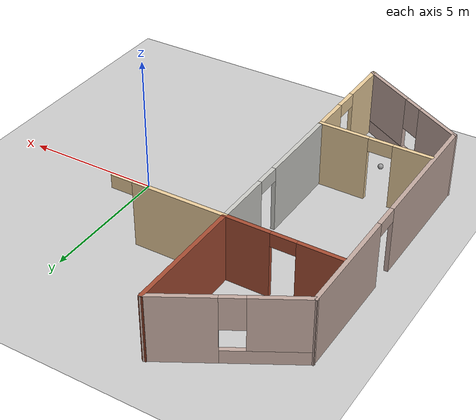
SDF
<sdf version="1.6">
 <world name="default">
  <model name="ground_plane">
   <static>1</static>
   <link name="link">
    <collision name="collision">
     <geometry><plane><normal>0 0 1</normal><size>100 100</size></plane></geometry>
     <surface><friction><ode><mu>100</mu><mu2>50</mu2></ode></friction></surface>
    </collision>
    <visual name="visual">
     <cast_shadows>0</cast_shadows>
     <geometry><plane><normal>0 0 1</normal><size>100 100</size></plane></geometry>
     <material>
      <script><uri>file://media/materials/scripts/gazebo.material</uri><name>Gazebo/Grey</name></script>
     </material>
    </visual>
   </link>
  </model>
  <model name="new_floor">
   <link name="Wall_22">
    <pose>-9.12522 0 0 0 0 -1.5708</pose>
    <visual name="Wall_22_Visual_0">
     <pose>-2.94929 0 1.25 0 -0 0</pose>
     <geometry><box><size>4.10142 0.15 2.5</size></box></geometry>
     <material>
      <script><uri>file://media/materials/scripts/gazebo.material</uri><name>Gazebo/Grey</name></script>
      <ambient>0.760784 0.662745 0.627451 1</ambient>
      <shader type="pixel"/>
      <diffuse>0.7 0.7 0.7 1</diffuse>
      <specular>0.01 0.01 0.01 1</specular>
      <emissive>0 0 0 1</emissive>
     </material>
    </visual>
    <visual name="Wall_22_Visual_1">
     <pose>2.50071 0 1.25 0 -0 0</pose>
     <geometry><box><size>4.99857 0.15 2.5</size></box></geometry>
     <material>
      <script><uri>file://media/materials/scripts/gazebo.material</uri><name>Gazebo/Grey</name></script>
      <ambient>0.760784 0.662745 0.627451 1</ambient>
      <shader type="pixel"/>
      <diffuse>0.7 0.7 0.7 1</diffuse>
      <specular>0.01 0.01 0.01 1</specular>
      <emissive>0 0 0 1</emissive>
     </material>
    </visual>
    <visual name="Wall_22_Visual_2">
     <pose>-0.448575 0 2.25 0 -0 0</pose>
     <geometry><box><size>0.9 0.15 0.5</size></box></geometry>
     <material>
      <script><uri>file://media/materials/scripts/gazebo.material</uri><name>Gazebo/Grey</name></script>
      <ambient>0.760784 0.662745 0.627451 1</ambient>
      <shader type="pixel"/>
      <diffuse>0.7 0.7 0.7 1</diffuse>
      <specular>0.01 0.01 0.01 1</specular>
      <emissive>0 0 0 1</emissive>
     </material>
    </visual>
    <collision name="Wall_22_Collision_0">
     <pose>-2.94929 0 1.25 0 -0 0</pose>
     <geometry><box><size>4.10142 0.15 2.5</size></box></geometry>
     <surface>
      <friction>
       <ode><mu>1</mu><mu2>1</mu2><fdir1>0 0 0</fdir1><slip1>0</slip1><slip2>0</slip2></ode>
       <torsional>
        <coefficient>1</coefficient>
        <patch_radius>0</patch_radius>
        <surface_radius>0</surface_radius>
        <use_patch_radius>1</use_patch_radius>
        <ode><slip>0</slip></ode>
       </torsional>
      </friction>
      <bounce><restitution_coefficient>0</restitution_coefficient><threshold>1e+06</threshold></bounce>
      <contact>
       <collide_without_contact>0</collide_without_contact>
       <collide_without_contact_bitmask>1</collide_without_contact_bitmask>
       <collide_bitmask>1</collide_bitmask>
       <ode>
        <soft_cfm>0</soft_cfm>
        <soft_erp>0.2</soft_erp>
        <kp>1e+13</kp>
        <kd>1</kd>
        <max_vel>0.01</max_vel>
        <min_depth>0</min_depth>
       </ode>
       <bullet>
        <split_impulse>1</split_impulse>
        <split_impulse_penetration_threshold>-0.01</split_impulse_penetration_threshold>
        <soft_cfm>0</soft_cfm>
        <soft_erp>0.2</soft_erp>
        <kp>1e+13</kp>
        <kd>1</kd>
       </bullet>
      </contact>
     </surface>
    </collision>
    <collision name="Wall_22_Collision_2">
     <pose>-0.448575 0 2.25 0 -0 0</pose>
     <geometry><box><size>0.9 0.15 0.5</size></box></geometry>
     <surface>
      <friction>
       <ode><mu>1</mu><mu2>1</mu2><fdir1>0 0 0</fdir1><slip1>0</slip1><slip2>0</slip2></ode>
       <torsional>
        <coefficient>1</coefficient>
        <patch_radius>0</patch_radius>
        <surface_radius>0</surface_radius>
        <use_patch_radius>1</use_patch_radius>
        <ode><slip>0</slip></ode>
       </torsional>
      </friction>
      <bounce><restitution_coefficient>0</restitution_coefficient><threshold>1e+06</threshold></bounce>
      <contact>
       <collide_without_contact>0</collide_without_contact>
       <collide_without_contact_bitmask>1</collide_without_contact_bitmask>
       <collide_bitmask>1</collide_bitmask>
       <ode>
        <soft_cfm>0</soft_cfm>
        <soft_erp>0.2</soft_erp>
        <kp>1e+13</kp>
        <kd>1</kd>
        <max_vel>0.01</max_vel>
        <min_depth>0</min_depth>
       </ode>
       <bullet>
        <split_impulse>1</split_impulse>
        <split_impulse_penetration_threshold>-0.01</split_impulse_penetration_threshold>
        <soft_cfm>0</soft_cfm>
        <soft_erp>0.2</soft_erp>
        <kp>1e+13</kp>
        <kd>1</kd>
       </bullet>
      </contact>
     </surface>
    </collision>
    <collision name="Wall_22_Collision_1">
     <pose>2.50071 0 1.25 0 -0 0</pose>
     <geometry><box><size>4.99857 0.15 2.5</size></box></geometry>
     <surface>
      <friction>
       <ode><mu>1</mu><mu2>1</mu2><fdir1>0 0 0</fdir1><slip1>0</slip1><slip2>0</slip2></ode>
       <torsional>
        <coefficient>1</coefficient>
        <patch_radius>0</patch_radius>
        <surface_radius>0</surface_radius>
        <use_patch_radius>1</use_patch_radius>
        <ode><slip>0</slip></ode>
       </torsional>
      </friction>
      <bounce><restitution_coefficient>0</restitution_coefficient><threshold>1e+06</threshold></bounce>
      <contact>
       <collide_without_contact>0</collide_without_contact>
       <collide_without_contact_bitmask>1</collide_without_contact_bitmask>
       <collide_bitmask>1</collide_bitmask>
       <ode>
        <soft_cfm>0</soft_cfm>
        <soft_erp>0.2</soft_erp>
        <kp>1e+13</kp>
        <kd>1</kd>
        <max_vel>0.01</max_vel>
        <min_depth>0</min_depth>
       </ode>
       <bullet>
        <split_impulse>1</split_impulse>
        <split_impulse_penetration_threshold>-0.01</split_impulse_penetration_threshold>
        <soft_cfm>0</soft_cfm>
        <soft_erp>0.2</soft_erp>
        <kp>1e+13</kp>
        <kd>1</kd>
       </bullet>
      </contact>
     </surface>
    </collision>
   </link>
   <link name="Wall_24">
    <pose>-7.02511 -6.1375 0 0 0 -0.523599</pose>
    <visual name="Wall_24_Visual_0">
     <pose>-1.50611 0 1.25 0 -0 0</pose>
     <geometry><box><size>1.98778 0.15 2.5</size></box></geometry>
     <material>
      <script><uri>file://media/materials/scripts/gazebo.material</uri><name>Gazebo/Grey</name></script>
      <ambient>0.760784 0.662745 0.627451 1</ambient>
      <shader type="pixel"/>
      <diffuse>0.7 0.7 0.7 1</diffuse>
      <specular>0.01 0.01 0.01 1</specular>
      <emissive>0 0 0 1</emissive>
     </material>
    </visual>
    <visual name="Wall_24_Visual_1">
     <pose>0.993891 0 0.25 0 -0 0</pose>
     <geometry><box><size>3.01222 0.15 0.5</size></box></geometry>
     <material>
      <script><uri>file://media/materials/scripts/gazebo.material</uri><name>Gazebo/Grey</name></script>
      <ambient>0.760784 0.662745 0.627451 1</ambient>
      <shader type="pixel"/>
      <diffuse>0.7 0.7 0.7 1</diffuse>
      <specular>0.01 0.01 0.01 1</specular>
      <emissive>0 0 0 1</emissive>
     </material>
    </visual>
    <visual name="Wall_24_Visual_2">
     <pose>1.39389 0 1.5 0 -0 0</pose>
     <geometry><box><size>2.21222 0.15 2</size></box></geometry>
     <material>
      <script><uri>file://media/materials/scripts/gazebo.material</uri><name>Gazebo/Grey</name></script>
      <ambient>0.760784 0.662745 0.627451 1</ambient>
      <shader type="pixel"/>
      <diffuse>0.7 0.7 0.7 1</diffuse>
      <specular>0.01 0.01 0.01 1</specular>
      <emissive>0 0 0 1</emissive>
     </material>
    </visual>
    <visual name="Wall_24_Visual_3">
     <pose>-0.112218 0 1.9 0 -0 0</pose>
     <geometry><box><size>0.8 0.15 1.2</size></box></geometry>
     <material>
      <script><uri>file://media/materials/scripts/gazebo.material</uri><name>Gazebo/Grey</name></script>
      <ambient>0.760784 0.662745 0.627451 1</ambient>
      <shader type="pixel"/>
      <diffuse>0.7 0.7 0.7 1</diffuse>
      <specular>0.01 0.01 0.01 1</specular>
      <emissive>0 0 0 1</emissive>
     </material>
    </visual>
    <collision name="Wall_24_Collision_0">
     <pose>-1.50611 0 1.25 0 -0 0</pose>
     <geometry><box><size>1.98778 0.15 2.5</size></box></geometry>
     <surface>
      <friction>
       <ode><mu>1</mu><mu2>1</mu2><fdir1>0 0 0</fdir1><slip1>0</slip1><slip2>0</slip2></ode>
       <torsional>
        <coefficient>1</coefficient>
        <patch_radius>0</patch_radius>
        <surface_radius>0</surface_radius>
        <use_patch_radius>1</use_patch_radius>
        <ode><slip>0</slip></ode>
       </torsional>
      </friction>
      <bounce><restitution_coefficient>0</restitution_coefficient><threshold>1e+06</threshold></bounce>
      <contact>
       <collide_without_contact>0</collide_without_contact>
       <collide_without_contact_bitmask>1</collide_without_contact_bitmask>
       <collide_bitmask>1</collide_bitmask>
       <ode>
        <soft_cfm>0</soft_cfm>
        <soft_erp>0.2</soft_erp>
        <kp>1e+13</kp>
        <kd>1</kd>
        <max_vel>0.01</max_vel>
        <min_depth>0</min_depth>
       </ode>
       <bullet>
        <split_impulse>1</split_impulse>
        <split_impulse_penetration_threshold>-0.01</split_impulse_penetration_threshold>
        <soft_cfm>0</soft_cfm>
        <soft_erp>0.2</soft_erp>
        <kp>1e+13</kp>
        <kd>1</kd>
       </bullet>
      </contact>
     </surface>
    </collision>
    <collision name="Wall_24_Collision_1">
     <pose>0.993891 0 0.25 0 -0 0</pose>
     <geometry><box><size>3.01222 0.15 0.5</size></box></geometry>
     <surface>
      <friction>
       <ode><mu>1</mu><mu2>1</mu2><fdir1>0 0 0</fdir1><slip1>0</slip1><slip2>0</slip2></ode>
       <torsional>
        <coefficient>1</coefficient>
        <patch_radius>0</patch_radius>
        <surface_radius>0</surface_radius>
        <use_patch_radius>1</use_patch_radius>
        <ode><slip>0</slip></ode>
       </torsional>
      </friction>
      <bounce><restitution_coefficient>0</restitution_coefficient><threshold>1e+06</threshold></bounce>
      <contact>
       <collide_without_contact>0</collide_without_contact>
       <collide_without_contact_bitmask>1</collide_without_contact_bitmask>
       <collide_bitmask>1</collide_bitmask>
       <ode>
        <soft_cfm>0</soft_cfm>
        <soft_erp>0.2</soft_erp>
        <kp>1e+13</kp>
        <kd>1</kd>
        <max_vel>0.01</max_vel>
        <min_depth>0</min_depth>
       </ode>
       <bullet>
        <split_impulse>1</split_impulse>
        <split_impulse_penetration_threshold>-0.01</split_impulse_penetration_threshold>
        <soft_cfm>0</soft_cfm>
        <soft_erp>0.2</soft_erp>
        <kp>1e+13</kp>
        <kd>1</kd>
       </bullet>
      </contact>
     </surface>
    </collision>
    <collision name="Wall_24_Collision_2">
     <pose>1.39389 0 1.5 0 -0 0</pose>
     <geometry><box><size>2.21222 0.15 2</size></box></geometry>
     <surface>
      <friction>
       <ode><mu>1</mu><mu2>1</mu2><fdir1>0 0 0</fdir1><slip1>0</slip1><slip2>0</slip2></ode>
       <torsional>
        <coefficient>1</coefficient>
        <patch_radius>0</patch_radius>
        <surface_radius>0</surface_radius>
        <use_patch_radius>1</use_patch_radius>
        <ode><slip>0</slip></ode>
       </torsional>
      </friction>
      <bounce><restitution_coefficient>0</restitution_coefficient><threshold>1e+06</threshold></bounce>
      <contact>
       <collide_without_contact>0</collide_without_contact>
       <collide_without_contact_bitmask>1</collide_without_contact_bitmask>
       <collide_bitmask>1</collide_bitmask>
       <ode>
        <soft_cfm>0</soft_cfm>
        <soft_erp>0.2</soft_erp>
        <kp>1e+13</kp>
        <kd>1</kd>
        <max_vel>0.01</max_vel>
        <min_depth>0</min_depth>
       </ode>
       <bullet>
        <split_impulse>1</split_impulse>
        <split_impulse_penetration_threshold>-0.01</split_impulse_penetration_threshold>
        <soft_cfm>0</soft_cfm>
        <soft_erp>0.2</soft_erp>
        <kp>1e+13</kp>
        <kd>1</kd>
       </bullet>
      </contact>
     </surface>
    </collision>
    <collision name="Wall_24_Collision_3">
     <pose>-0.112218 0 1.9 0 -0 0</pose>
     <geometry><box><size>0.8 0.15 1.2</size></box></geometry>
     <surface>
      <friction>
       <ode><mu>1</mu><mu2>1</mu2><fdir1>0 0 0</fdir1><slip1>0</slip1><slip2>0</slip2></ode>
       <torsional>
        <coefficient>1</coefficient>
        <patch_radius>0</patch_radius>
        <surface_radius>0</surface_radius>
        <use_patch_radius>1</use_patch_radius>
        <ode><slip>0</slip></ode>
       </torsional>
      </friction>
      <bounce><restitution_coefficient>0</restitution_coefficient><threshold>1e+06</threshold></bounce>
      <contact>
       <collide_without_contact>0</collide_without_contact>
       <collide_without_contact_bitmask>1</collide_without_contact_bitmask>
       <collide_bitmask>1</collide_bitmask>
       <ode>
        <soft_cfm>0</soft_cfm>
        <soft_erp>0.2</soft_erp>
        <kp>1e+13</kp>
        <kd>1</kd>
        <max_vel>0.01</max_vel>
        <min_depth>0</min_depth>
       </ode>
       <bullet>
        <split_impulse>1</split_impulse>
        <split_impulse_penetration_threshold>-0.01</split_impulse_penetration_threshold>
        <soft_cfm>0</soft_cfm>
        <soft_erp>0.2</soft_erp>
        <kp>1e+13</kp>
        <kd>1</kd>
       </bullet>
      </contact>
     </surface>
    </collision>
   </link>
   <link name="Wall_30">
    <pose>-7.02511 6.1375 0 0 0 -2.61799</pose>
    <visual name="Wall_30_Visual_0">
     <pose>-1.39719 0 1.25 0 -0 0</pose>
     <geometry><box><size>2.20562 0.15 2.5</size></box></geometry>
     <material>
      <script><uri>file://media/materials/scripts/gazebo.material</uri><name>Gazebo/Grey</name></script>
      <ambient>0.760784 0.662745 0.627451 1</ambient>
      <shader type="pixel"/>
      <diffuse>0.7 0.7 0.7 1</diffuse>
      <specular>0.01 0.01 0.01 1</specular>
      <emissive>0 0 0 1</emissive>
     </material>
    </visual>
    <visual name="Wall_30_Visual_1">
     <pose>1.10281 0 0.25 0 -0 0</pose>
     <geometry><box><size>2.79438 0.15 0.5</size></box></geometry>
     <material>
      <script><uri>file://media/materials/scripts/gazebo.material</uri><name>Gazebo/Grey</name></script>
      <ambient>0.760784 0.662745 0.627451 1</ambient>
      <shader type="pixel"/>
      <diffuse>0.7 0.7 0.7 1</diffuse>
      <specular>0.01 0.01 0.01 1</specular>
      <emissive>0 0 0 1</emissive>
     </material>
    </visual>
    <visual name="Wall_30_Visual_2">
     <pose>1.50281 0 1.5 0 -0 0</pose>
     <geometry><box><size>1.99438 0.15 2</size></box></geometry>
     <material>
      <script><uri>file://media/materials/scripts/gazebo.material</uri><name>Gazebo/Grey</name></script>
      <ambient>0.760784 0.662745 0.627451 1</ambient>
      <shader type="pixel"/>
      <diffuse>0.7 0.7 0.7 1</diffuse>
      <specular>0.01 0.01 0.01 1</specular>
      <emissive>0 0 0 1</emissive>
     </material>
    </visual>
    <visual name="Wall_30_Visual_3">
     <pose>0.10562 0 1.9 0 -0 0</pose>
     <geometry><box><size>0.8 0.15 1.2</size></box></geometry>
     <material>
      <script><uri>file://media/materials/scripts/gazebo.material</uri><name>Gazebo/Grey</name></script>
      <ambient>0.760784 0.662745 0.627451 1</ambient>
      <shader type="pixel"/>
      <diffuse>0.7 0.7 0.7 1</diffuse>
      <specular>0.01 0.01 0.01 1</specular>
      <emissive>0 0 0 1</emissive>
     </material>
    </visual>
    <collision name="Wall_30_Collision_0">
     <pose>-1.39719 0 1.25 0 -0 0</pose>
     <geometry><box><size>2.20562 0.15 2.5</size></box></geometry>
     <surface>
      <friction>
       <ode><mu>1</mu><mu2>1</mu2><fdir1>0 0 0</fdir1><slip1>0</slip1><slip2>0</slip2></ode>
       <torsional>
        <coefficient>1</coefficient>
        <patch_radius>0</patch_radius>
        <surface_radius>0</surface_radius>
        <use_patch_radius>1</use_patch_radius>
        <ode><slip>0</slip></ode>
       </torsional>
      </friction>
      <bounce><restitution_coefficient>0</restitution_coefficient><threshold>1e+06</threshold></bounce>
      <contact>
       <collide_without_contact>0</collide_without_contact>
       <collide_without_contact_bitmask>1</collide_without_contact_bitmask>
       <collide_bitmask>1</collide_bitmask>
       <ode>
        <soft_cfm>0</soft_cfm>
        <soft_erp>0.2</soft_erp>
        <kp>1e+13</kp>
        <kd>1</kd>
        <max_vel>0.01</max_vel>
        <min_depth>0</min_depth>
       </ode>
       <bullet>
        <split_impulse>1</split_impulse>
        <split_impulse_penetration_threshold>-0.01</split_impulse_penetration_threshold>
        <soft_cfm>0</soft_cfm>
        <soft_erp>0.2</soft_erp>
        <kp>1e+13</kp>
        <kd>1</kd>
       </bullet>
      </contact>
     </surface>
    </collision>
    <collision name="Wall_30_Collision_1">
     <pose>1.10281 0 0.25 0 -0 0</pose>
     <geometry><box><size>2.79438 0.15 0.5</size></box></geometry>
     <surface>
      <friction>
       <ode><mu>1</mu><mu2>1</mu2><fdir1>0 0 0</fdir1><slip1>0</slip1><slip2>0</slip2></ode>
       <torsional>
        <coefficient>1</coefficient>
        <patch_radius>0</patch_radius>
        <surface_radius>0</surface_radius>
        <use_patch_radius>1</use_patch_radius>
        <ode><slip>0</slip></ode>
       </torsional>
      </friction>
      <bounce><restitution_coefficient>0</restitution_coefficient><threshold>1e+06</threshold></bounce>
      <contact>
       <collide_without_contact>0</collide_without_contact>
       <collide_without_contact_bitmask>1</collide_without_contact_bitmask>
       <collide_bitmask>1</collide_bitmask>
       <ode>
        <soft_cfm>0</soft_cfm>
        <soft_erp>0.2</soft_erp>
        <kp>1e+13</kp>
        <kd>1</kd>
        <max_vel>0.01</max_vel>
        <min_depth>0</min_depth>
       </ode>
       <bullet>
        <split_impulse>1</split_impulse>
        <split_impulse_penetration_threshold>-0.01</split_impulse_penetration_threshold>
        <soft_cfm>0</soft_cfm>
        <soft_erp>0.2</soft_erp>
        <kp>1e+13</kp>
        <kd>1</kd>
       </bullet>
      </contact>
     </surface>
    </collision>
    <collision name="Wall_30_Collision_2">
     <pose>1.50281 0 1.5 0 -0 0</pose>
     <geometry><box><size>1.99438 0.15 2</size></box></geometry>
     <surface>
      <friction>
       <ode><mu>1</mu><mu2>1</mu2><fdir1>0 0 0</fdir1><slip1>0</slip1><slip2>0</slip2></ode>
       <torsional>
        <coefficient>1</coefficient>
        <patch_radius>0</patch_radius>
        <surface_radius>0</surface_radius>
        <use_patch_radius>1</use_patch_radius>
        <ode><slip>0</slip></ode>
       </torsional>
      </friction>
      <bounce><restitution_coefficient>0</restitution_coefficient><threshold>1e+06</threshold></bounce>
      <contact>
       <collide_without_contact>0</collide_without_contact>
       <collide_without_contact_bitmask>1</collide_without_contact_bitmask>
       <collide_bitmask>1</collide_bitmask>
       <ode>
        <soft_cfm>0</soft_cfm>
        <soft_erp>0.2</soft_erp>
        <kp>1e+13</kp>
        <kd>1</kd>
        <max_vel>0.01</max_vel>
        <min_depth>0</min_depth>
       </ode>
       <bullet>
        <split_impulse>1</split_impulse>
        <split_impulse_penetration_threshold>-0.01</split_impulse_penetration_threshold>
        <soft_cfm>0</soft_cfm>
        <soft_erp>0.2</soft_erp>
        <kp>1e+13</kp>
        <kd>1</kd>
       </bullet>
      </contact>
     </surface>
    </collision>
    <collision name="Wall_30_Collision_3">
     <pose>0.10562 0 1.9 0 -0 0</pose>
     <geometry><box><size>0.8 0.15 1.2</size></box></geometry>
     <surface>
      <friction>
       <ode><mu>1</mu><mu2>1</mu2><fdir1>0 0 0</fdir1><slip1>0</slip1><slip2>0</slip2></ode>
       <torsional>
        <coefficient>1</coefficient>
        <patch_radius>0</patch_radius>
        <surface_radius>0</surface_radius>
        <use_patch_radius>1</use_patch_radius>
        <ode><slip>0</slip></ode>
       </torsional>
      </friction>
      <bounce><restitution_coefficient>0</restitution_coefficient><threshold>1e+06</threshold></bounce>
      <contact>
       <collide_without_contact>0</collide_without_contact>
       <collide_without_contact_bitmask>1</collide_without_contact_bitmask>
       <collide_bitmask>1</collide_bitmask>
       <ode>
        <soft_cfm>0</soft_cfm>
        <soft_erp>0.2</soft_erp>
        <kp>1e+13</kp>
        <kd>1</kd>
        <max_vel>0.01</max_vel>
        <min_depth>0</min_depth>
       </ode>
       <bullet>
        <split_impulse>1</split_impulse>
        <split_impulse_penetration_threshold>-0.01</split_impulse_penetration_threshold>
        <soft_cfm>0</soft_cfm>
        <soft_erp>0.2</soft_erp>
        <kp>1e+13</kp>
        <kd>1</kd>
       </bullet>
      </contact>
     </surface>
    </collision>
   </link>
   <link name="Wall_32">
    <pose>-4.925 5.175 0 0 0 -1.5708</pose>
    <visual name="Wall_32_Visual">
     <pose>0 0 1.25 0 -0 0</pose>
     <geometry><box><size>4.5 0.15 2.5</size></box></geometry>
     <material>
      <script><uri>file://media/materials/scripts/gazebo.material</uri><name>Gazebo/Bricks</name></script>
      <ambient>1 1 1 1</ambient>
      <shader type="pixel"/>
      <diffuse>1 1 1 1</diffuse>
      <specular>0.2 0.2 0.2 1</specular>
      <emissive>0 0 0 1</emissive>
     </material>
    </visual>
    <collision name="Wall_32_Collision">
     <pose>0 0 1.25 0 -0 0</pose>
     <geometry><box><size>4.5 0.15 2.5</size></box></geometry>
     <surface>
      <friction>
       <ode><mu>1</mu><mu2>1</mu2><fdir1>0 0 0</fdir1><slip1>0</slip1><slip2>0</slip2></ode>
       <torsional>
        <coefficient>1</coefficient>
        <patch_radius>0</patch_radius>
        <surface_radius>0</surface_radius>
        <use_patch_radius>1</use_patch_radius>
        <ode><slip>0</slip></ode>
       </torsional>
      </friction>
      <bounce><restitution_coefficient>0</restitution_coefficient><threshold>1e+06</threshold></bounce>
      <contact>
       <collide_without_contact>0</collide_without_contact>
       <collide_without_contact_bitmask>1</collide_without_contact_bitmask>
       <collide_bitmask>1</collide_bitmask>
       <ode>
        <soft_cfm>0</soft_cfm>
        <soft_erp>0.2</soft_erp>
        <kp>1e+13</kp>
        <kd>1</kd>
        <max_vel>0.01</max_vel>
        <min_depth>0</min_depth>
       </ode>
       <bullet>
        <split_impulse>1</split_impulse>
        <split_impulse_penetration_threshold>-0.01</split_impulse_penetration_threshold>
        <soft_cfm>0</soft_cfm>
        <soft_erp>0.2</soft_erp>
        <kp>1e+13</kp>
        <kd>1</kd>
       </bullet>
      </contact>
     </surface>
    </collision>
   </link>
   <link name="Wall_33">
    <pose>-6.975 3 0 0 -0 3.14159</pose>
    <visual name="Wall_33_Visual_0">
     <pose>-1.27049 0 1.25 0 -0 0</pose>
     <geometry><box><size>1.70902 0.15 2.5</size></box></geometry>
     <material>
      <script><uri>file://media/materials/scripts/gazebo.material</uri><name>Gazebo/Bricks</name></script>
      <ambient>1 1 1 1</ambient>
      <shader type="pixel"/>
      <diffuse>1 1 1 1</diffuse>
      <specular>0.2 0.2 0.2 1</specular>
      <emissive>0 0 0 1</emissive>
     </material>
    </visual>
    <visual name="Wall_33_Visual_1">
     <pose>1.30451 0 1.25 0 -0 0</pose>
     <geometry><box><size>1.64098 0.15 2.5</size></box></geometry>
     <material>
      <script><uri>file://media/materials/scripts/gazebo.material</uri><name>Gazebo/Bricks</name></script>
      <ambient>1 1 1 1</ambient>
      <shader type="pixel"/>
      <diffuse>1 1 1 1</diffuse>
      <specular>0.2 0.2 0.2 1</specular>
      <emissive>0 0 0 1</emissive>
     </material>
    </visual>
    <visual name="Wall_33_Visual_2">
     <pose>0.034019 0 2.25 0 -0 0</pose>
     <geometry><box><size>0.9 0.15 0.5</size></box></geometry>
     <material>
      <script><uri>file://media/materials/scripts/gazebo.material</uri><name>Gazebo/Bricks</name></script>
      <ambient>1 1 1 1</ambient>
      <shader type="pixel"/>
      <diffuse>1 1 1 1</diffuse>
      <specular>0.2 0.2 0.2 1</specular>
      <emissive>0 0 0 1</emissive>
     </material>
    </visual>
    <collision name="Wall_33_Collision_0">
     <pose>-1.27049 0 1.25 0 -0 0</pose>
     <geometry><box><size>1.70902 0.15 2.5</size></box></geometry>
     <surface>
      <friction>
       <ode><mu>1</mu><mu2>1</mu2><fdir1>0 0 0</fdir1><slip1>0</slip1><slip2>0</slip2></ode>
       <torsional>
        <coefficient>1</coefficient>
        <patch_radius>0</patch_radius>
        <surface_radius>0</surface_radius>
        <use_patch_radius>1</use_patch_radius>
        <ode><slip>0</slip></ode>
       </torsional>
      </friction>
      <bounce><restitution_coefficient>0</restitution_coefficient><threshold>1e+06</threshold></bounce>
      <contact>
       <collide_without_contact>0</collide_without_contact>
       <collide_without_contact_bitmask>1</collide_without_contact_bitmask>
       <collide_bitmask>1</collide_bitmask>
       <ode>
        <soft_cfm>0</soft_cfm>
        <soft_erp>0.2</soft_erp>
        <kp>1e+13</kp>
        <kd>1</kd>
        <max_vel>0.01</max_vel>
        <min_depth>0</min_depth>
       </ode>
       <bullet>
        <split_impulse>1</split_impulse>
        <split_impulse_penetration_threshold>-0.01</split_impulse_penetration_threshold>
        <soft_cfm>0</soft_cfm>
        <soft_erp>0.2</soft_erp>
        <kp>1e+13</kp>
        <kd>1</kd>
       </bullet>
      </contact>
     </surface>
    </collision>
    <collision name="Wall_33_Collision_1">
     <pose>1.30451 0 1.25 0 -0 0</pose>
     <geometry><box><size>1.64098 0.15 2.5</size></box></geometry>
     <surface>
      <friction>
       <ode><mu>1</mu><mu2>1</mu2><fdir1>0 0 0</fdir1><slip1>0</slip1><slip2>0</slip2></ode>
       <torsional>
        <coefficient>1</coefficient>
        <patch_radius>0</patch_radius>
        <surface_radius>0</surface_radius>
        <use_patch_radius>1</use_patch_radius>
        <ode><slip>0</slip></ode>
       </torsional>
      </friction>
      <bounce><restitution_coefficient>0</restitution_coefficient><threshold>1e+06</threshold></bounce>
      <contact>
       <collide_without_contact>0</collide_without_contact>
       <collide_without_contact_bitmask>1</collide_without_contact_bitmask>
       <collide_bitmask>1</collide_bitmask>
       <ode>
        <soft_cfm>0</soft_cfm>
        <soft_erp>0.2</soft_erp>
        <kp>1e+13</kp>
        <kd>1</kd>
        <max_vel>0.01</max_vel>
        <min_depth>0</min_depth>
       </ode>
       <bullet>
        <split_impulse>1</split_impulse>
        <split_impulse_penetration_threshold>-0.01</split_impulse_penetration_threshold>
        <soft_cfm>0</soft_cfm>
        <soft_erp>0.2</soft_erp>
        <kp>1e+13</kp>
        <kd>1</kd>
       </bullet>
      </contact>
     </surface>
    </collision>
    <collision name="Wall_33_Collision_2">
     <pose>0.034019 0 2.25 0 -0 0</pose>
     <geometry><box><size>0.9 0.15 0.5</size></box></geometry>
     <surface>
      <friction>
       <ode><mu>1</mu><mu2>1</mu2><fdir1>0 0 0</fdir1><slip1>0</slip1><slip2>0</slip2></ode>
       <torsional>
        <coefficient>1</coefficient>
        <patch_radius>0</patch_radius>
        <surface_radius>0</surface_radius>
        <use_patch_radius>1</use_patch_radius>
        <ode><slip>0</slip></ode>
       </torsional>
      </friction>
      <bounce><restitution_coefficient>0</restitution_coefficient><threshold>1e+06</threshold></bounce>
      <contact>
       <collide_without_contact>0</collide_without_contact>
       <collide_without_contact_bitmask>1</collide_without_contact_bitmask>
       <collide_bitmask>1</collide_bitmask>
       <ode>
        <soft_cfm>0</soft_cfm>
        <soft_erp>0.2</soft_erp>
        <kp>1e+13</kp>
        <kd>1</kd>
        <max_vel>0.01</max_vel>
        <min_depth>0</min_depth>
       </ode>
       <bullet>
        <split_impulse>1</split_impulse>
        <split_impulse_penetration_threshold>-0.01</split_impulse_penetration_threshold>
        <soft_cfm>0</soft_cfm>
        <soft_erp>0.2</soft_erp>
        <kp>1e+13</kp>
        <kd>1</kd>
       </bullet>
      </contact>
     </surface>
    </collision>
   </link>
   <link name="Wall_40">
    <pose>-4.925 -5.3 0 0 -0 1.5708</pose>
    <visual name="Wall_40_Visual_0">
     <pose>-1.179 0 1.25 0 -0 0</pose>
     <geometry><box><size>1.89201 0.15 2.5</size></box></geometry>
     <material>
      <script><uri>file://media/materials/scripts/gazebo.material</uri><name>Gazebo/Grey</name></script>
      <ambient>0.921569 0.807843 0.615686 1</ambient>
      <shader type="pixel"/>
      <diffuse>0.7 0.7 0.7 1</diffuse>
      <specular>0.01 0.01 0.01 1</specular>
      <emissive>0 0 0 1</emissive>
     </material>
    </visual>
    <visual name="Wall_40_Visual_1">
     <pose>1.396 0 1.25 0 -0 0</pose>
     <geometry><box><size>1.45799 0.15 2.5</size></box></geometry>
     <material>
      <script><uri>file://media/materials/scripts/gazebo.material</uri><name>Gazebo/Grey</name></script>
      <ambient>0.921569 0.807843 0.615686 1</ambient>
      <shader type="pixel"/>
      <diffuse>0.7 0.7 0.7 1</diffuse>
      <specular>0.01 0.01 0.01 1</specular>
      <emissive>0 0 0 1</emissive>
     </material>
    </visual>
    <visual name="Wall_40_Visual_2">
     <pose>0.21701 0 2.25 0 -0 0</pose>
     <geometry><box><size>0.9 0.15 0.5</size></box></geometry>
     <material>
      <script><uri>file://media/materials/scripts/gazebo.material</uri><name>Gazebo/Grey</name></script>
      <ambient>0.921569 0.807843 0.615686 1</ambient>
      <shader type="pixel"/>
      <diffuse>0.7 0.7 0.7 1</diffuse>
      <specular>0.01 0.01 0.01 1</specular>
      <emissive>0 0 0 1</emissive>
     </material>
    </visual>
    <collision name="Wall_40_Collision_0">
     <pose>-1.179 0 1.25 0 -0 0</pose>
     <geometry><box><size>1.89201 0.15 2.5</size></box></geometry>
     <surface>
      <friction>
       <ode><mu>1</mu><mu2>1</mu2><fdir1>0 0 0</fdir1><slip1>0</slip1><slip2>0</slip2></ode>
       <torsional>
        <coefficient>1</coefficient>
        <patch_radius>0</patch_radius>
        <surface_radius>0</surface_radius>
        <use_patch_radius>1</use_patch_radius>
        <ode><slip>0</slip></ode>
       </torsional>
      </friction>
      <bounce><restitution_coefficient>0</restitution_coefficient><threshold>1e+06</threshold></bounce>
      <contact>
       <collide_without_contact>0</collide_without_contact>
       <collide_without_contact_bitmask>1</collide_without_contact_bitmask>
       <collide_bitmask>1</collide_bitmask>
       <ode>
        <soft_cfm>0</soft_cfm>
        <soft_erp>0.2</soft_erp>
        <kp>1e+13</kp>
        <kd>1</kd>
        <max_vel>0.01</max_vel>
        <min_depth>0</min_depth>
       </ode>
       <bullet>
        <split_impulse>1</split_impulse>
        <split_impulse_penetration_threshold>-0.01</split_impulse_penetration_threshold>
        <soft_cfm>0</soft_cfm>
        <soft_erp>0.2</soft_erp>
        <kp>1e+13</kp>
        <kd>1</kd>
       </bullet>
      </contact>
     </surface>
    </collision>
    <collision name="Wall_40_Collision_1">
     <pose>1.396 0 1.25 0 -0 0</pose>
     <geometry><box><size>1.45799 0.15 2.5</size></box></geometry>
     <surface>
      <friction>
       <ode><mu>1</mu><mu2>1</mu2><fdir1>0 0 0</fdir1><slip1>0</slip1><slip2>0</slip2></ode>
       <torsional>
        <coefficient>1</coefficient>
        <patch_radius>0</patch_radius>
        <surface_radius>0</surface_radius>
        <use_patch_radius>1</use_patch_radius>
        <ode><slip>0</slip></ode>
       </torsional>
      </friction>
      <bounce><restitution_coefficient>0</restitution_coefficient><threshold>1e+06</threshold></bounce>
      <contact>
       <collide_without_contact>0</collide_without_contact>
       <collide_without_contact_bitmask>1</collide_without_contact_bitmask>
       <collide_bitmask>1</collide_bitmask>
       <ode>
        <soft_cfm>0</soft_cfm>
        <soft_erp>0.2</soft_erp>
        <kp>1e+13</kp>
        <kd>1</kd>
        <max_vel>0.01</max_vel>
        <min_depth>0</min_depth>
       </ode>
       <bullet>
        <split_impulse>1</split_impulse>
        <split_impulse_penetration_threshold>-0.01</split_impulse_penetration_threshold>
        <soft_cfm>0</soft_cfm>
        <soft_erp>0.2</soft_erp>
        <kp>1e+13</kp>
        <kd>1</kd>
       </bullet>
      </contact>
     </surface>
    </collision>
    <collision name="Wall_40_Collision_2">
     <pose>0.21701 0 2.25 0 -0 0</pose>
     <geometry><box><size>0.9 0.15 0.5</size></box></geometry>
     <surface>
      <friction>
       <ode><mu>1</mu><mu2>1</mu2><fdir1>0 0 0</fdir1><slip1>0</slip1><slip2>0</slip2></ode>
       <torsional>
        <coefficient>1</coefficient>
        <patch_radius>0</patch_radius>
        <surface_radius>0</surface_radius>
        <use_patch_radius>1</use_patch_radius>
        <ode><slip>0</slip></ode>
       </torsional>
      </friction>
      <bounce><restitution_coefficient>0</restitution_coefficient><threshold>1e+06</threshold></bounce>
      <contact>
       <collide_without_contact>0</collide_without_contact>
       <collide_without_contact_bitmask>1</collide_without_contact_bitmask>
       <collide_bitmask>1</collide_bitmask>
       <ode>
        <soft_cfm>0</soft_cfm>
        <soft_erp>0.2</soft_erp>
        <kp>1e+13</kp>
        <kd>1</kd>
        <max_vel>0.01</max_vel>
        <min_depth>0</min_depth>
       </ode>
       <bullet>
        <split_impulse>1</split_impulse>
        <split_impulse_penetration_threshold>-0.01</split_impulse_penetration_threshold>
        <soft_cfm>0</soft_cfm>
        <soft_erp>0.2</soft_erp>
        <kp>1e+13</kp>
        <kd>1</kd>
       </bullet>
      </contact>
     </surface>
    </collision>
   </link>
   <link name="Wall_41">
    <pose>-6.975 -3.25 0 0 -0 3.14159</pose>
    <visual name="Wall_41_Visual_0">
     <pose>-1.17444 0 1.25 0 -0 0</pose>
     <geometry><box><size>1.90112 0.15 2.5</size></box></geometry>
     <material>
      <script><uri>file://media/materials/scripts/gazebo.material</uri><name>Gazebo/Grey</name></script>
      <ambient>0.921569 0.807843 0.615686 1</ambient>
      <shader type="pixel"/>
      <diffuse>0.7 0.7 0.7 1</diffuse>
      <specular>0.01 0.01 0.01 1</specular>
      <emissive>0 0 0 1</emissive>
     </material>
    </visual>
    <visual name="Wall_41_Visual_1">
     <pose>1.40056 0 1.25 0 -0 0</pose>
     <geometry><box><size>1.44888 0.15 2.5</size></box></geometry>
     <material>
      <script><uri>file://media/materials/scripts/gazebo.material</uri><name>Gazebo/Grey</name></script>
      <ambient>0.921569 0.807843 0.615686 1</ambient>
      <shader type="pixel"/>
      <diffuse>0.7 0.7 0.7 1</diffuse>
      <specular>0.01 0.01 0.01 1</specular>
      <emissive>0 0 0 1</emissive>
     </material>
    </visual>
    <visual name="Wall_41_Visual_2">
     <pose>0.22612 0 2.25 0 -0 0</pose>
     <geometry><box><size>0.9 0.15 0.5</size></box></geometry>
     <material>
      <script><uri>file://media/materials/scripts/gazebo.material</uri><name>Gazebo/Grey</name></script>
      <ambient>0.921569 0.807843 0.615686 1</ambient>
      <shader type="pixel"/>
      <diffuse>0.7 0.7 0.7 1</diffuse>
      <specular>0.01 0.01 0.01 1</specular>
      <emissive>0 0 0 1</emissive>
     </material>
    </visual>
    <collision name="Wall_41_Collision_0">
     <pose>-1.17444 0 1.25 0 -0 0</pose>
     <geometry><box><size>1.90112 0.15 2.5</size></box></geometry>
     <surface>
      <friction>
       <ode><mu>1</mu><mu2>1</mu2><fdir1>0 0 0</fdir1><slip1>0</slip1><slip2>0</slip2></ode>
       <torsional>
        <coefficient>1</coefficient>
        <patch_radius>0</patch_radius>
        <surface_radius>0</surface_radius>
        <use_patch_radius>1</use_patch_radius>
        <ode><slip>0</slip></ode>
       </torsional>
      </friction>
      <bounce><restitution_coefficient>0</restitution_coefficient><threshold>1e+06</threshold></bounce>
      <contact>
       <collide_without_contact>0</collide_without_contact>
       <collide_without_contact_bitmask>1</collide_without_contact_bitmask>
       <collide_bitmask>1</collide_bitmask>
       <ode>
        <soft_cfm>0</soft_cfm>
        <soft_erp>0.2</soft_erp>
        <kp>1e+13</kp>
        <kd>1</kd>
        <max_vel>0.01</max_vel>
        <min_depth>0</min_depth>
       </ode>
       <bullet>
        <split_impulse>1</split_impulse>
        <split_impulse_penetration_threshold>-0.01</split_impulse_penetration_threshold>
        <soft_cfm>0</soft_cfm>
        <soft_erp>0.2</soft_erp>
        <kp>1e+13</kp>
        <kd>1</kd>
       </bullet>
      </contact>
     </surface>
    </collision>
    <collision name="Wall_41_Collision_1">
     <pose>1.40056 0 1.25 0 -0 0</pose>
     <geometry><box><size>1.44888 0.15 2.5</size></box></geometry>
     <surface>
      <friction>
       <ode><mu>1</mu><mu2>1</mu2><fdir1>0 0 0</fdir1><slip1>0</slip1><slip2>0</slip2></ode>
       <torsional>
        <coefficient>1</coefficient>
        <patch_radius>0</patch_radius>
        <surface_radius>0</surface_radius>
        <use_patch_radius>1</use_patch_radius>
        <ode><slip>0</slip></ode>
       </torsional>
      </friction>
      <bounce><restitution_coefficient>0</restitution_coefficient><threshold>1e+06</threshold></bounce>
      <contact>
       <collide_without_contact>0</collide_without_contact>
       <collide_without_contact_bitmask>1</collide_without_contact_bitmask>
       <collide_bitmask>1</collide_bitmask>
       <ode>
        <soft_cfm>0</soft_cfm>
        <soft_erp>0.2</soft_erp>
        <kp>1e+13</kp>
        <kd>1</kd>
        <max_vel>0.01</max_vel>
        <min_depth>0</min_depth>
       </ode>
       <bullet>
        <split_impulse>1</split_impulse>
        <split_impulse_penetration_threshold>-0.01</split_impulse_penetration_threshold>
        <soft_cfm>0</soft_cfm>
        <soft_erp>0.2</soft_erp>
        <kp>1e+13</kp>
        <kd>1</kd>
       </bullet>
      </contact>
     </surface>
    </collision>
    <collision name="Wall_41_Collision_2">
     <pose>0.22612 0 2.25 0 -0 0</pose>
     <geometry><box><size>0.9 0.15 0.5</size></box></geometry>
     <surface>
      <friction>
       <ode><mu>1</mu><mu2>1</mu2><fdir1>0 0 0</fdir1><slip1>0</slip1><slip2>0</slip2></ode>
       <torsional>
        <coefficient>1</coefficient>
        <patch_radius>0</patch_radius>
        <surface_radius>0</surface_radius>
        <use_patch_radius>1</use_patch_radius>
        <ode><slip>0</slip></ode>
       </torsional>
      </friction>
      <bounce><restitution_coefficient>0</restitution_coefficient><threshold>1e+06</threshold></bounce>
      <contact>
       <collide_without_contact>0</collide_without_contact>
       <collide_without_contact_bitmask>1</collide_without_contact_bitmask>
       <collide_bitmask>1</collide_bitmask>
       <ode>
        <soft_cfm>0</soft_cfm>
        <soft_erp>0.2</soft_erp>
        <kp>1e+13</kp>
        <kd>1</kd>
        <max_vel>0.01</max_vel>
        <min_depth>0</min_depth>
       </ode>
       <bullet>
        <split_impulse>1</split_impulse>
        <split_impulse_penetration_threshold>-0.01</split_impulse_penetration_threshold>
        <soft_cfm>0</soft_cfm>
        <soft_erp>0.2</soft_erp>
        <kp>1e+13</kp>
        <kd>1</kd>
       </bullet>
      </contact>
     </surface>
    </collision>
   </link>
   <link name="Wall_43">
    <pose>-4.925 -0.05 0 0 0 -1.5708</pose>
    <visual name="Wall_43_Visual_0">
     <pose>-2.03942 0 1.25 0 -0 0</pose>
     <geometry><box><size>2.17116 0.15 2.5</size></box></geometry>
     <material>
      <script><uri>file://media/materials/scripts/gazebo.material</uri><name>Gazebo/CeilingTiled</name></script>
      <ambient>0.921569 0.807843 0.615686 1</ambient>
      <shader type="pixel"/>
      <diffuse>1 1 1 1</diffuse>
      <specular>0 0 0 1</specular>
      <emissive>0 0 0 1</emissive>
     </material>
    </visual>
    <visual name="Wall_43_Visual_1">
     <pose>1.53558 0 1.25 0 -0 0</pose>
     <geometry><box><size>3.17884 0.15 2.5</size></box></geometry>
     <material>
      <script><uri>file://media/materials/scripts/gazebo.material</uri><name>Gazebo/CeilingTiled</name></script>
      <ambient>0.921569 0.807843 0.615686 1</ambient>
      <shader type="pixel"/>
      <diffuse>1 1 1 1</diffuse>
      <specular>0 0 0 1</specular>
      <emissive>0 0 0 1</emissive>
     </material>
    </visual>
    <visual name="Wall_43_Visual_2">
     <pose>-0.503842 0 2.25 0 -0 0</pose>
     <geometry><box><size>0.9 0.15 0.5</size></box></geometry>
     <material>
      <script><uri>file://media/materials/scripts/gazebo.material</uri><name>Gazebo/CeilingTiled</name></script>
      <ambient>0.921569 0.807843 0.615686 1</ambient>
      <shader type="pixel"/>
      <diffuse>1 1 1 1</diffuse>
      <specular>0 0 0 1</specular>
      <emissive>0 0 0 1</emissive>
     </material>
    </visual>
    <collision name="Wall_43_Collision_0">
     <pose>-2.03942 0 1.25 0 -0 0</pose>
     <geometry><box><size>2.17116 0.15 2.5</size></box></geometry>
     <surface>
      <friction>
       <ode><mu>1</mu><mu2>1</mu2><fdir1>0 0 0</fdir1><slip1>0</slip1><slip2>0</slip2></ode>
       <torsional>
        <coefficient>1</coefficient>
        <patch_radius>0</patch_radius>
        <surface_radius>0</surface_radius>
        <use_patch_radius>1</use_patch_radius>
        <ode><slip>0</slip></ode>
       </torsional>
      </friction>
      <bounce><restitution_coefficient>0</restitution_coefficient><threshold>1e+06</threshold></bounce>
      <contact>
       <collide_without_contact>0</collide_without_contact>
       <collide_without_contact_bitmask>1</collide_without_contact_bitmask>
       <collide_bitmask>1</collide_bitmask>
       <ode>
        <soft_cfm>0</soft_cfm>
        <soft_erp>0.2</soft_erp>
        <kp>1e+13</kp>
        <kd>1</kd>
        <max_vel>0.01</max_vel>
        <min_depth>0</min_depth>
       </ode>
       <bullet>
        <split_impulse>1</split_impulse>
        <split_impulse_penetration_threshold>-0.01</split_impulse_penetration_threshold>
        <soft_cfm>0</soft_cfm>
        <soft_erp>0.2</soft_erp>
        <kp>1e+13</kp>
        <kd>1</kd>
       </bullet>
      </contact>
     </surface>
    </collision>
    <collision name="Wall_43_Collision_1">
     <pose>1.53558 0 1.25 0 -0 0</pose>
     <geometry><box><size>3.17884 0.15 2.5</size></box></geometry>
     <surface>
      <friction>
       <ode><mu>1</mu><mu2>1</mu2><fdir1>0 0 0</fdir1><slip1>0</slip1><slip2>0</slip2></ode>
       <torsional>
        <coefficient>1</coefficient>
        <patch_radius>0</patch_radius>
        <surface_radius>0</surface_radius>
        <use_patch_radius>1</use_patch_radius>
        <ode><slip>0</slip></ode>
       </torsional>
      </friction>
      <bounce><restitution_coefficient>0</restitution_coefficient><threshold>1e+06</threshold></bounce>
      <contact>
       <collide_without_contact>0</collide_without_contact>
       <collide_without_contact_bitmask>1</collide_without_contact_bitmask>
       <collide_bitmask>1</collide_bitmask>
       <ode>
        <soft_cfm>0</soft_cfm>
        <soft_erp>0.2</soft_erp>
        <kp>1e+13</kp>
        <kd>1</kd>
        <max_vel>0.01</max_vel>
        <min_depth>0</min_depth>
       </ode>
       <bullet>
        <split_impulse>1</split_impulse>
        <split_impulse_penetration_threshold>-0.01</split_impulse_penetration_threshold>
        <soft_cfm>0</soft_cfm>
        <soft_erp>0.2</soft_erp>
        <kp>1e+13</kp>
        <kd>1</kd>
       </bullet>
      </contact>
     </surface>
    </collision>
    <collision name="Wall_43_Collision_2">
     <pose>-0.503842 0 2.25 0 -0 0</pose>
     <geometry><box><size>0.9 0.15 0.5</size></box></geometry>
     <surface>
      <friction>
       <ode><mu>1</mu><mu2>1</mu2><fdir1>0 0 0</fdir1><slip1>0</slip1><slip2>0</slip2></ode>
       <torsional>
        <coefficient>1</coefficient>
        <patch_radius>0</patch_radius>
        <surface_radius>0</surface_radius>
        <use_patch_radius>1</use_patch_radius>
        <ode><slip>0</slip></ode>
       </torsional>
      </friction>
      <bounce><restitution_coefficient>0</restitution_coefficient><threshold>1e+06</threshold></bounce>
      <contact>
       <collide_without_contact>0</collide_without_contact>
       <collide_without_contact_bitmask>1</collide_without_contact_bitmask>
       <collide_bitmask>1</collide_bitmask>
       <ode>
        <soft_cfm>0</soft_cfm>
        <soft_erp>0.2</soft_erp>
        <kp>1e+13</kp>
        <kd>1</kd>
        <max_vel>0.01</max_vel>
        <min_depth>0</min_depth>
       </ode>
       <bullet>
        <split_impulse>1</split_impulse>
        <split_impulse_penetration_threshold>-0.01</split_impulse_penetration_threshold>
        <soft_cfm>0</soft_cfm>
        <soft_erp>0.2</soft_erp>
        <kp>1e+13</kp>
        <kd>1</kd>
       </bullet>
      </contact>
     </surface>
    </collision>
   </link>
   <link name="Wall_55">
    <pose>-2.83579 3.01171 0 0 -0 0.005605</pose>
    <visual name="Wall_55_Visual_0">
     <pose>-0.410924 0 1.25 0 -0 0</pose>
     <geometry><box><size>3.50664 0.15 2.5</size></box></geometry>
     <material>
      <script><uri>file://media/materials/scripts/gazebo.material</uri><name>Gazebo/Grey</name></script>
      <ambient>0.921569 0.807843 0.615686 1</ambient>
      <shader type="pixel"/>
      <diffuse>0.7 0.7 0.7 1</diffuse>
      <specular>0.01 0.01 0.01 1</specular>
      <emissive>0 0 0 1</emissive>
     </material>
    </visual>
    <visual name="Wall_55_Visual_1">
     <pose>1.75332 0 2.25 0 -0 0</pose>
     <geometry><box><size>0.821847 0.15 0.5</size></box></geometry>
     <material>
      <script><uri>file://media/materials/scripts/gazebo.material</uri><name>Gazebo/Grey</name></script>
      <ambient>0.921569 0.807843 0.615686 1</ambient>
      <shader type="pixel"/>
      <diffuse>0.7 0.7 0.7 1</diffuse>
      <specular>0.01 0.01 0.01 1</specular>
      <emissive>0 0 0 1</emissive>
     </material>
    </visual>
    <collision name="Wall_55_Collision_0">
     <pose>-0.410924 0 1.25 0 -0 0</pose>
     <geometry><box><size>3.50664 0.15 2.5</size></box></geometry>
     <surface>
      <friction>
       <ode><mu>1</mu><mu2>1</mu2><fdir1>0 0 0</fdir1><slip1>0</slip1><slip2>0</slip2></ode>
       <torsional>
        <coefficient>1</coefficient>
        <patch_radius>0</patch_radius>
        <surface_radius>0</surface_radius>
        <use_patch_radius>1</use_patch_radius>
        <ode><slip>0</slip></ode>
       </torsional>
      </friction>
      <bounce><restitution_coefficient>0</restitution_coefficient><threshold>1e+06</threshold></bounce>
      <contact>
       <collide_without_contact>0</collide_without_contact>
       <collide_without_contact_bitmask>1</collide_without_contact_bitmask>
       <collide_bitmask>1</collide_bitmask>
       <ode>
        <soft_cfm>0</soft_cfm>
        <soft_erp>0.2</soft_erp>
        <kp>1e+13</kp>
        <kd>1</kd>
        <max_vel>0.01</max_vel>
        <min_depth>0</min_depth>
       </ode>
       <bullet>
        <split_impulse>1</split_impulse>
        <split_impulse_penetration_threshold>-0.01</split_impulse_penetration_threshold>
        <soft_cfm>0</soft_cfm>
        <soft_erp>0.2</soft_erp>
        <kp>1e+13</kp>
        <kd>1</kd>
       </bullet>
      </contact>
     </surface>
    </collision>
    <collision name="Wall_55_Collision_1">
     <pose>1.75332 0 2.25 0 -0 0</pose>
     <geometry><box><size>0.821847 0.15 0.5</size></box></geometry>
     <surface>
      <friction>
       <ode><mu>1</mu><mu2>1</mu2><fdir1>0 0 0</fdir1><slip1>0</slip1><slip2>0</slip2></ode>
       <torsional>
        <coefficient>1</coefficient>
        <patch_radius>0</patch_radius>
        <surface_radius>0</surface_radius>
        <use_patch_radius>1</use_patch_radius>
        <ode><slip>0</slip></ode>
       </torsional>
      </friction>
      <bounce><restitution_coefficient>0</restitution_coefficient><threshold>1e+06</threshold></bounce>
      <contact>
       <collide_without_contact>0</collide_without_contact>
       <collide_without_contact_bitmask>1</collide_without_contact_bitmask>
       <collide_bitmask>1</collide_bitmask>
       <ode>
        <soft_cfm>0</soft_cfm>
        <soft_erp>0.2</soft_erp>
        <kp>1e+13</kp>
        <kd>1</kd>
        <max_vel>0.01</max_vel>
        <min_depth>0</min_depth>
       </ode>
       <bullet>
        <split_impulse>1</split_impulse>
        <split_impulse_penetration_threshold>-0.01</split_impulse_penetration_threshold>
        <soft_cfm>0</soft_cfm>
        <soft_erp>0.2</soft_erp>
        <kp>1e+13</kp>
        <kd>1</kd>
       </bullet>
      </contact>
     </surface>
    </collision>
   </link>
   <static>1</static>
   <pose>-0.054068 -0.158533 0 0 -0 0</pose>
  </model>
  <model name="unit_sphere">
   <link name="link">
    <inertial>
     <mass>1</mass>
     <inertia><ixx>0.1</ixx><ixy>0</ixy><ixz>0</ixz><iyy>0.1</iyy><iyz>0</iyz><izz>0.1</izz></inertia>
    </inertial>
    <visual name="visual">
     <geometry><sphere><radius>0.1</radius></sphere></geometry>
     <material>
      <script><name>Gazebo/Grey</name><uri>file://media/materials/scripts/gazebo.material</uri></script>
      <shader type="pixel"><normal_map>__default__</normal_map></shader>
      <ambient>1 1 1 1</ambient>
      <diffuse>1 1 1 1</diffuse>
      <specular>1 1 1 1</specular>
      <emissive>1 1 1 1</emissive>
     </material>
    </visual>
    <collision name="collision">
     <geometry><sphere><radius>0.1</radius></sphere></geometry>
     <surface>
      <friction>
       <ode><mu>1</mu><mu2>1</mu2><fdir1>0 0 0</fdir1><slip1>0</slip1><slip2>0</slip2></ode>
       <torsional>
        <coefficient>1</coefficient>
        <patch_radius>0</patch_radius>
        <surface_radius>0</surface_radius>
        <use_patch_radius>1</use_patch_radius>
        <ode><slip>0</slip></ode>
       </torsional>
      </friction>
      <bounce><restitution_coefficient>0</restitution_coefficient><threshold>1e+06</threshold></bounce>
      <contact>
       <collide_without_contact>0</collide_without_contact>
       <collide_without_contact_bitmask>1</collide_without_contact_bitmask>
       <collide_bitmask>1</collide_bitmask>
       <ode>
        <soft_cfm>0</soft_cfm>
        <soft_erp>0.2</soft_erp>
        <kp>1e+13</kp>
        <kd>1</kd>
        <max_vel>0.01</max_vel>
        <min_depth>0</min_depth>
       </ode>
       <bullet>
        <split_impulse>1</split_impulse>
        <split_impulse_penetration_threshold>-0.01</split_impulse_penetration_threshold>
        <soft_cfm>0</soft_cfm>
        <soft_erp>0.2</soft_erp>
        <kp>1e+13</kp>
        <kd>1</kd>
       </bullet>
      </contact>
     </surface>
    </collision>
   </link>
   <static>0</static>
   <pose>-6.74117 -4.79886 0.5 0 -0 0</pose>
  </model>
 </world>
</sdf>
